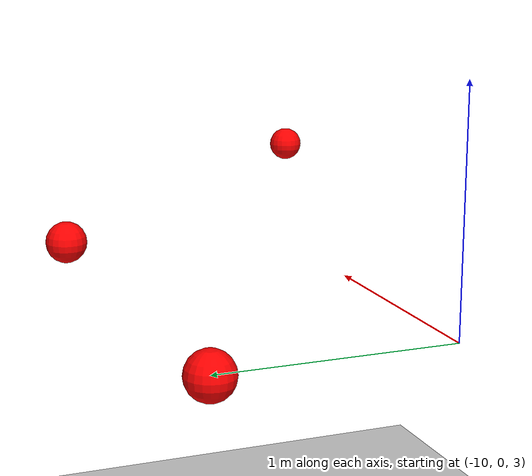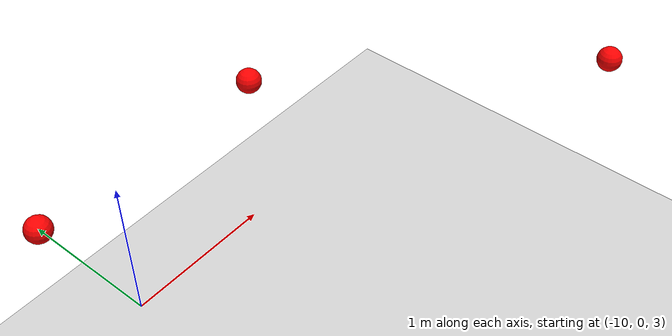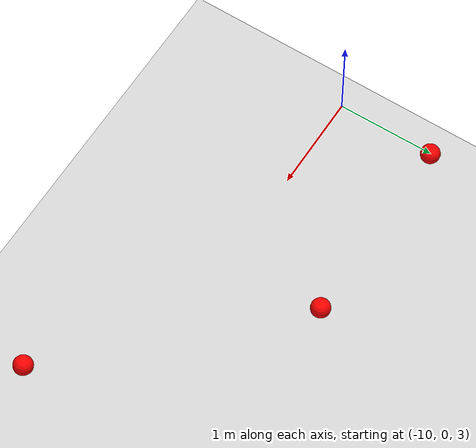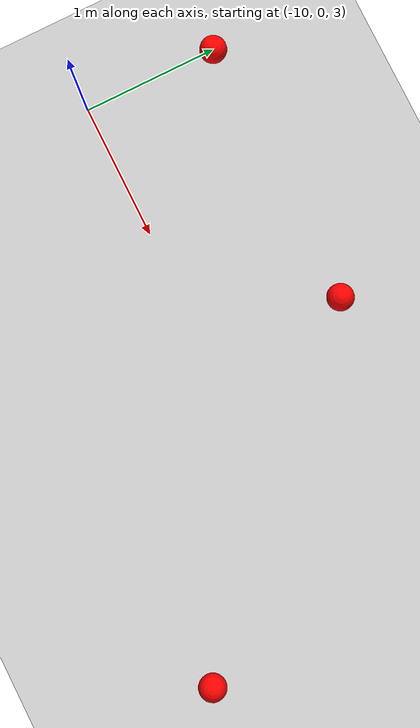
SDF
<sdf version="1.5">
 <world name="default">
  <include><uri>model://sun</uri></include>
  <include><uri>model://ground_plane</uri></include>
  <physics name="default_physics" type="bullet">
   <gravity>0 0 -9.8066</gravity>
   <ode>
    <solver>
     <type>quick</type>
     <iters>150</iters>
     <sor>0.8</sor>
     <use_dynamic_moi_rescaling>0</use_dynamic_moi_rescaling>
    </solver>
    <constraints>
     <cfm>0</cfm>
     <erp>0.2</erp>
     <contact_max_correcting_vel>100</contact_max_correcting_vel>
     <contact_surface_layer>0.001</contact_surface_layer>
    </constraints>
   </ode>
   <bullet><solver><type>sequential_impulse</type><iters>100</iters><sor>1.0</sor></solver></bullet>
   <max_step_size>0.001</max_step_size>
   <real_time_factor>1</real_time_factor>
   <real_time_update_rate>1000</real_time_update_rate>
   <magnetic_field>6.0e-6 2.3e-5 -4.2e-5</magnetic_field>
   <max_contacts>40</max_contacts>
  </physics>
  <model name="sphere1">
   <static>1</static>
   <link name="link">
    <collision name="collision"><geometry><sphere><radius>0.1</radius></sphere></geometry></collision>
    <visual name="visual">
     <cast_shadows>0</cast_shadows>
     <geometry><sphere><radius>0.1</radius></sphere></geometry>
     <material>
      <script><name>Gazebo/Grey</name><uri>file://media/materials/scripts/gazebo.material</uri></script>
      <shader type="pixel"><normal_map>__default__</normal_map></shader>
      <ambient>1 0 0 1</ambient>
      <diffuse>0.7 0.7 0.7 1</diffuse>
      <specular>0.01 0.01 0.01 1</specular>
      <emissive>0 0 0 1</emissive>
     </material>
    </visual>
    <gravity>0</gravity>
   </link>
   <pose>-10 1 3 0 -0 0</pose>
  </model>
  <model name="sphere2">
   <static>1</static>
   <link name="link">
    <collision name="collision"><geometry><sphere><radius>0.1</radius></sphere></geometry></collision>
    <visual name="visual">
     <cast_shadows>0</cast_shadows>
     <geometry><sphere><radius>0.1</radius></sphere></geometry>
     <material>
      <script><name>Gazebo/Grey</name><uri>file://media/materials/scripts/gazebo.material</uri></script>
      <shader type="pixel"><normal_map>__default__</normal_map></shader>
      <ambient>1 0 0 1</ambient>
      <diffuse>0.7 0.7 0.7 1</diffuse>
      <specular>0.01 0.01 0.01 1</specular>
      <emissive>0 0 0 1</emissive>
     </material>
    </visual>
    <gravity>0</gravity>
   </link>
   <pose>-6 -1 3 0 -0 0</pose>
  </model>
  <model name="sphere3">
   <static>1</static>
   <link name="link">
    <collision name="collision"><geometry><sphere><radius>0.1</radius></sphere></geometry></collision>
    <visual name="visual">
     <cast_shadows>0</cast_shadows>
     <geometry><sphere><radius>0.1</radius></sphere></geometry>
     <material>
      <script><name>Gazebo/Grey</name><uri>file://media/materials/scripts/gazebo.material</uri></script>
      <shader type="pixel"><normal_map>__default__</normal_map></shader>
      <ambient>1 0 0 1</ambient>
      <diffuse>0.7 0.7 0.7 1</diffuse>
      <specular>0.01 0.01 0.01 1</specular>
      <emissive>0 0 0 1</emissive>
     </material>
    </visual>
    <gravity>0</gravity>
   </link>
   <pose>-8 1 3 0 -0 0</pose>
  </model>
 </world>
</sdf>
